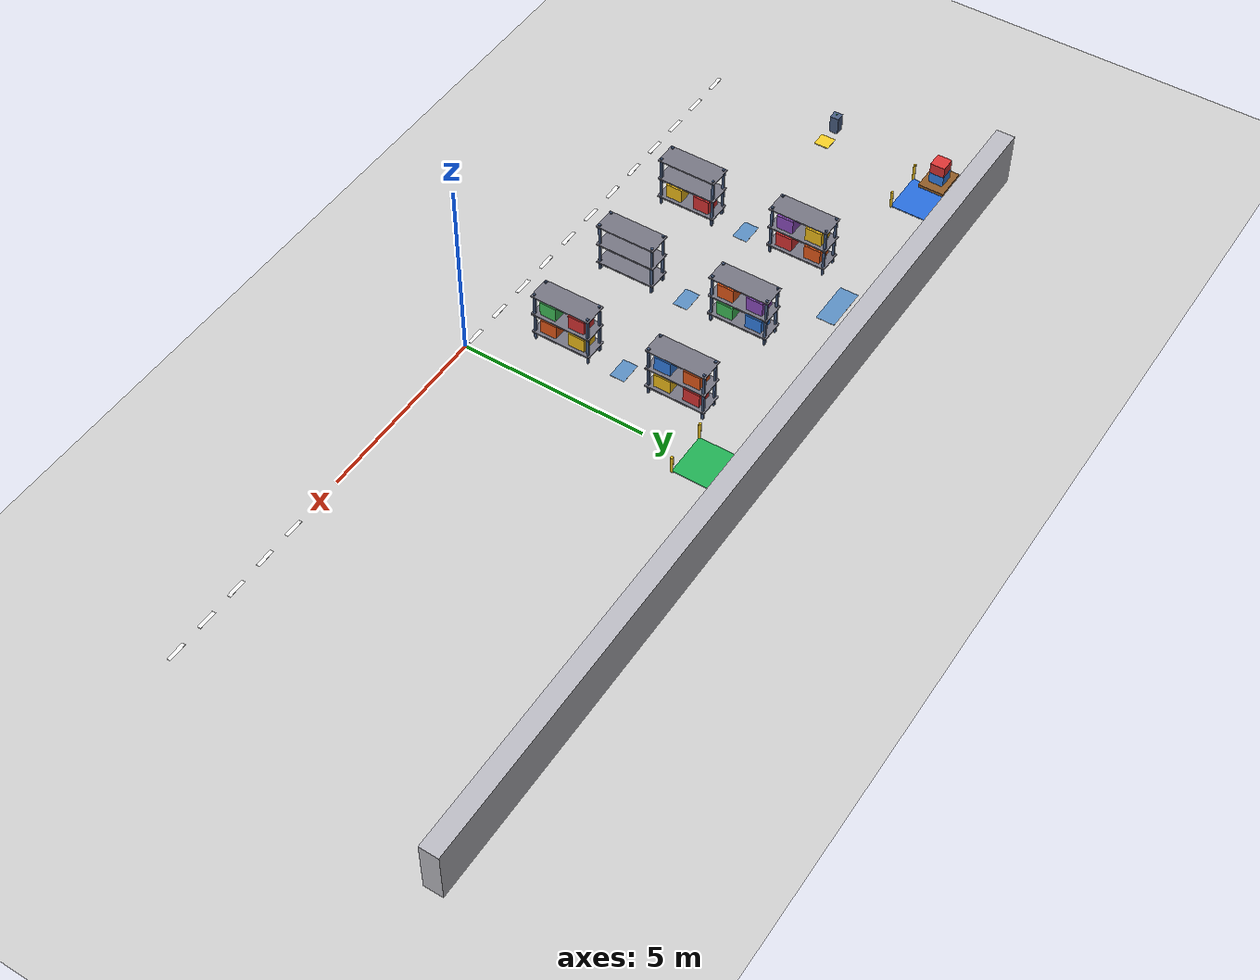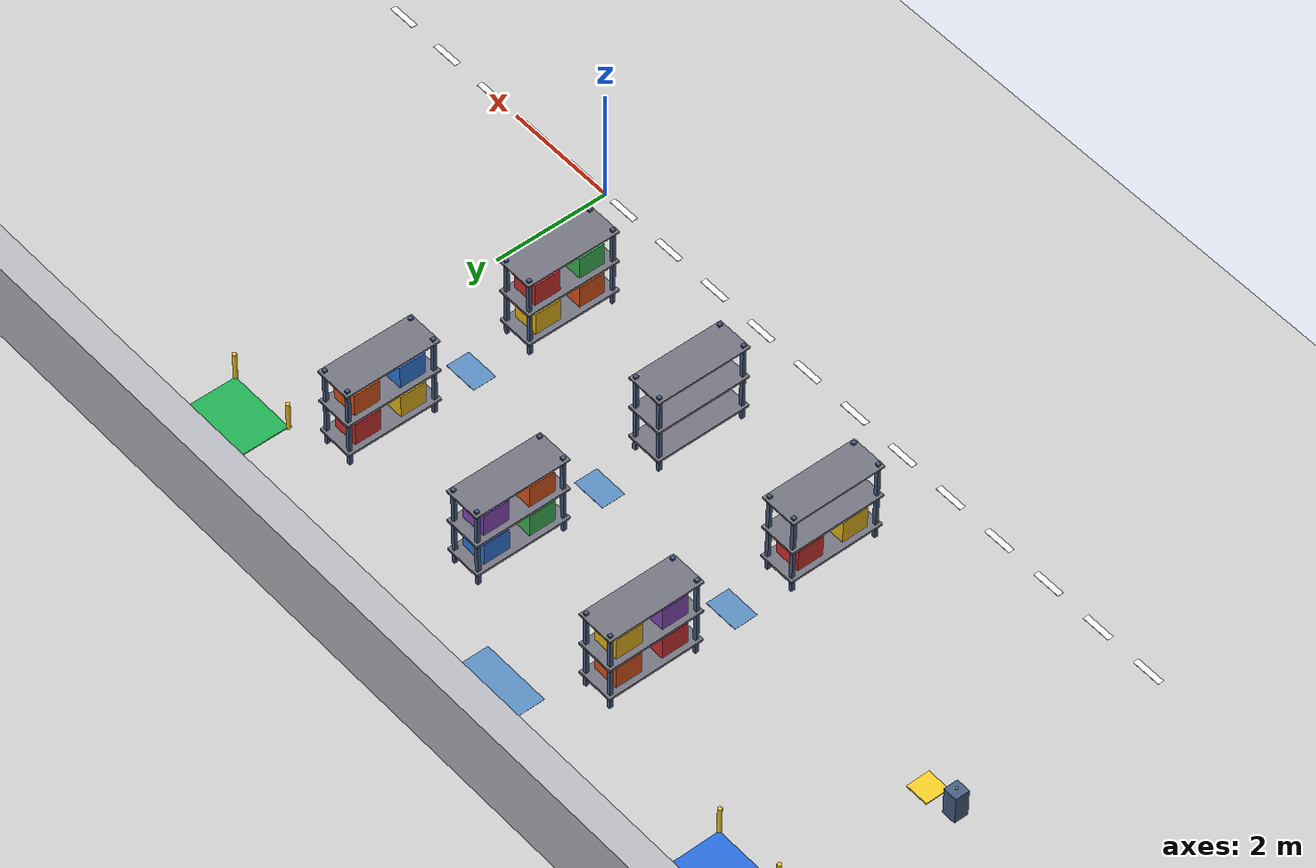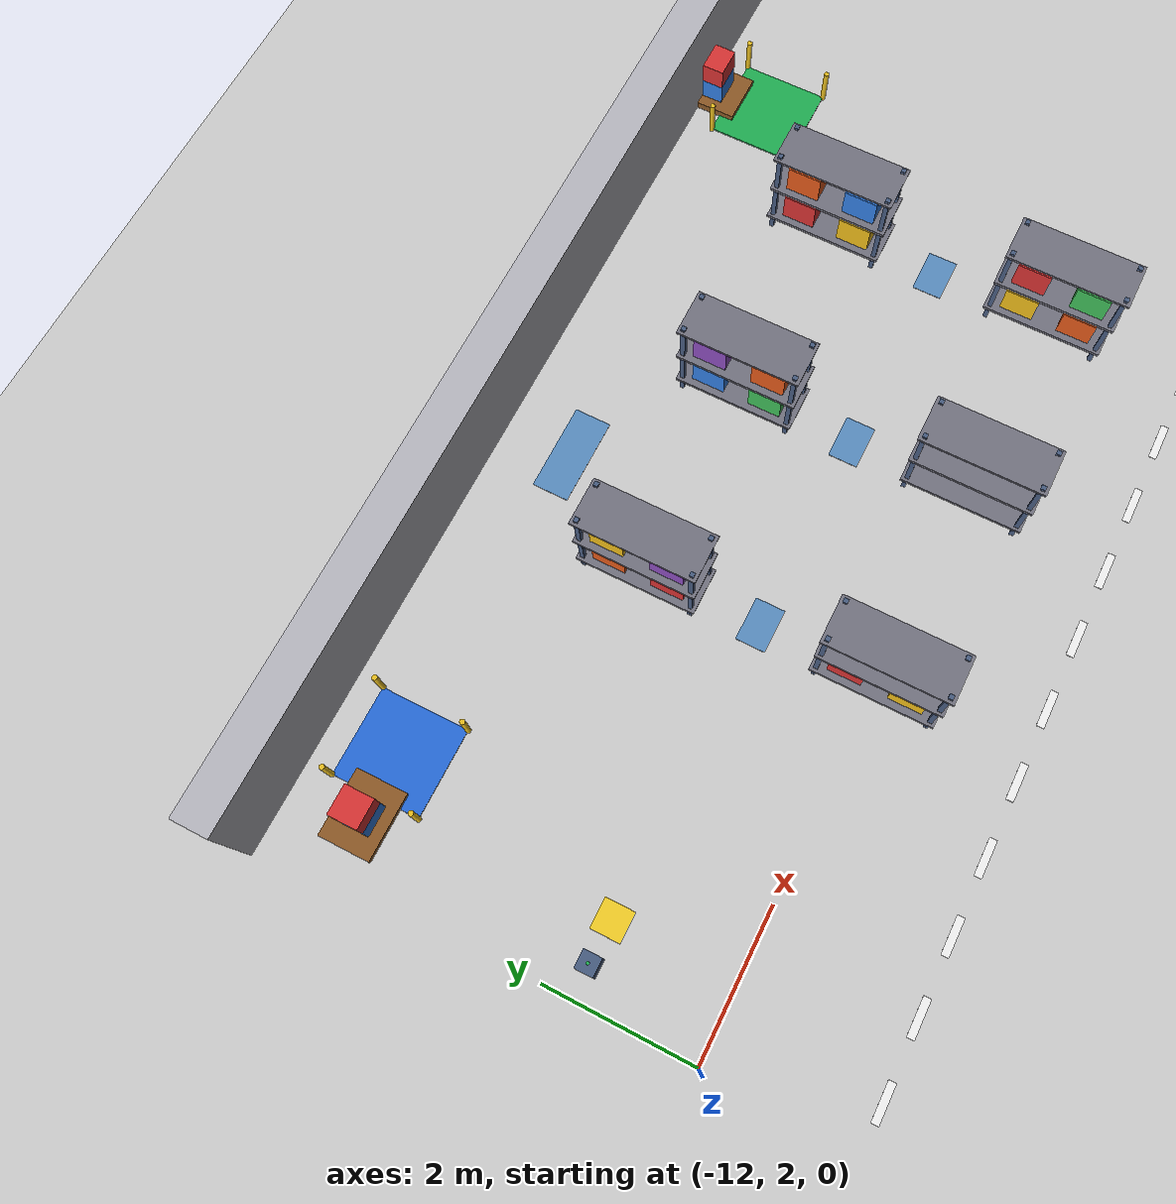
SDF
<sdf version="1.6">
 <world name="warehouse">
  <include><uri>model://ground_plane</uri></include>
  <include><uri>model://sun</uri></include>
  <model name="wall_north">
   <static>true</static>
   <pose>0 8.0 0.75 0 0 0</pose>
   <link name="wall">
    <visual name="wall_v">
     <geometry><box><size>24.5 0.5 1.5</size></box></geometry>
     <material>
      <ambient>0.72 0.72 0.75 1.0</ambient>
      <diffuse>0.72 0.72 0.75 1.0</diffuse>
      <specular>0.1 0.1 0.1 1</specular>
     </material>
    </visual>
    <collision name="wall_c"><geometry><box><size>24.5 0.5 1.5</size></box></geometry></collision>
   </link>
  </model>
  <model name="rack_r0_c0">
   <static>true</static>
   <pose>-7.0 5.2 0 0 0 0</pose>
   <link name="col">
    <collision name="col_c">
     <pose>0 0 0.75 0 0 0</pose>
     <geometry><box><size>0.6 1.0 1.5</size></box></geometry>
    </collision>
   </link>
   <link name="post_0_25_0_75">
    <visual name="post_0_25_0_75_v">
     <pose>0.25 0.75 0.75 0 0 0</pose>
     <geometry><box><size>0.06 0.06 1.5</size></box></geometry>
     <material>
      <ambient>0.28 0.36 0.5 1.0</ambient>
      <diffuse>0.28 0.36 0.5 1.0</diffuse>
      <specular>0.1 0.1 0.1 1</specular>
     </material>
    </visual>
   </link>
   <link name="post_0_25_m0_75">
    <visual name="post_0_25_m0_75_v">
     <pose>0.25 -0.75 0.75 0 0 0</pose>
     <geometry><box><size>0.06 0.06 1.5</size></box></geometry>
     <material>
      <ambient>0.28 0.36 0.5 1.0</ambient>
      <diffuse>0.28 0.36 0.5 1.0</diffuse>
      <specular>0.1 0.1 0.1 1</specular>
     </material>
    </visual>
   </link>
   <link name="post_m0_25_0_75">
    <visual name="post_m0_25_0_75_v">
     <pose>-0.25 0.75 0.75 0 0 0</pose>
     <geometry><box><size>0.06 0.06 1.5</size></box></geometry>
     <material>
      <ambient>0.28 0.36 0.5 1.0</ambient>
      <diffuse>0.28 0.36 0.5 1.0</diffuse>
      <specular>0.1 0.1 0.1 1</specular>
     </material>
    </visual>
   </link>
   <link name="post_m0_25_m0_75">
    <visual name="post_m0_25_m0_75_v">
     <pose>-0.25 -0.75 0.75 0 0 0</pose>
     <geometry><box><size>0.06 0.06 1.5</size></box></geometry>
     <material>
      <ambient>0.28 0.36 0.5 1.0</ambient>
      <diffuse>0.28 0.36 0.5 1.0</diffuse>
      <specular>0.1 0.1 0.1 1</specular>
     </material>
    </visual>
   </link>
   <link name="deck_low">
    <visual name="deck_low_v">
     <pose>0 0 0.25 0 0 0</pose>
     <geometry><box><size>0.64 1.6400000000000001 0.04</size></box></geometry>
     <material>
      <ambient>0.45 0.45 0.5 1.0</ambient>
      <diffuse>0.45 0.45 0.5 1.0</diffuse>
      <specular>0.1 0.1 0.1 1</specular>
     </material>
    </visual>
   </link>
   <link name="deck_mid">
    <visual name="deck_mid_v">
     <pose>0 0 0.85 0 0 0</pose>
     <geometry><box><size>0.64 1.6400000000000001 0.04</size></box></geometry>
     <material>
      <ambient>0.45 0.45 0.5 1.0</ambient>
      <diffuse>0.45 0.45 0.5 1.0</diffuse>
      <specular>0.1 0.1 0.1 1</specular>
     </material>
    </visual>
   </link>
   <link name="top_beam">
    <visual name="top_beam_v">
     <pose>0 0 1.45 0 0 0</pose>
     <geometry><box><size>0.64 1.6400000000000001 0.03</size></box></geometry>
     <material>
      <ambient>0.45 0.45 0.5 1.0</ambient>
      <diffuse>0.45 0.45 0.5 1.0</diffuse>
      <specular>0.1 0.1 0.1 1</specular>
     </material>
    </visual>
   </link>
   <link name="box_l1">
    <visual name="box_l1_v">
     <pose>0 0.4 0.47 0 0 0</pose>
     <geometry><box><size>0.45 0.45 0.4</size></box></geometry>
     <material>
      <ambient>0.9 0.35 0.1 1.0</ambient>
      <diffuse>0.9 0.35 0.1 1.0</diffuse>
      <specular>0.1 0.1 0.1 1</specular>
     </material>
    </visual>
   </link>
   <link name="box_l2">
    <visual name="box_l2_v">
     <pose>0 -0.4 0.47 0 0 0</pose>
     <geometry><box><size>0.45 0.45 0.4</size></box></geometry>
     <material>
      <ambient>0.85 0.2 0.2 1.0</ambient>
      <diffuse>0.85 0.2 0.2 1.0</diffuse>
      <specular>0.1 0.1 0.1 1</specular>
     </material>
    </visual>
   </link>
   <link name="box_h1">
    <visual name="box_h1_v">
     <pose>0 0.4 1.07 0 0 0</pose>
     <geometry><box><size>0.45 0.45 0.4</size></box></geometry>
     <material>
      <ambient>0.95 0.75 0.1 1.0</ambient>
      <diffuse>0.95 0.75 0.1 1.0</diffuse>
      <specular>0.1 0.1 0.1 1</specular>
     </material>
    </visual>
   </link>
   <link name="box_h2">
    <visual name="box_h2_v">
     <pose>0 -0.4 1.07 0 0 0</pose>
     <geometry><box><size>0.45 0.45 0.4</size></box></geometry>
     <material>
      <ambient>0.55 0.3 0.75 1.0</ambient>
      <diffuse>0.55 0.3 0.75 1.0</diffuse>
      <specular>0.1 0.1 0.1 1</specular>
     </material>
    </visual>
   </link>
  </model>
  <model name="rack_r0_c1">
   <static>true</static>
   <pose>-4.2 5.2 0 0 0 0</pose>
   <link name="col">
    <collision name="col_c">
     <pose>0 0 0.75 0 0 0</pose>
     <geometry><box><size>0.6 1.6 1.5</size></box></geometry>
    </collision>
   </link>
   <link name="post_0_25_0_75">
    <visual name="post_0_25_0_75_v">
     <pose>0.25 0.75 0.75 0 0 0</pose>
     <geometry><box><size>0.06 0.06 1.5</size></box></geometry>
     <material>
      <ambient>0.28 0.36 0.5 1.0</ambient>
      <diffuse>0.28 0.36 0.5 1.0</diffuse>
      <specular>0.1 0.1 0.1 1</specular>
     </material>
    </visual>
   </link>
   <link name="post_0_25_m0_75">
    <visual name="post_0_25_m0_75_v">
     <pose>0.25 -0.75 0.75 0 0 0</pose>
     <geometry><box><size>0.06 0.06 1.5</size></box></geometry>
     <material>
      <ambient>0.28 0.36 0.5 1.0</ambient>
      <diffuse>0.28 0.36 0.5 1.0</diffuse>
      <specular>0.1 0.1 0.1 1</specular>
     </material>
    </visual>
   </link>
   <link name="post_m0_25_0_75">
    <visual name="post_m0_25_0_75_v">
     <pose>-0.25 0.75 0.75 0 0 0</pose>
     <geometry><box><size>0.06 0.06 1.5</size></box></geometry>
     <material>
      <ambient>0.28 0.36 0.5 1.0</ambient>
      <diffuse>0.28 0.36 0.5 1.0</diffuse>
      <specular>0.1 0.1 0.1 1</specular>
     </material>
    </visual>
   </link>
   <link name="post_m0_25_m0_75">
    <visual name="post_m0_25_m0_75_v">
     <pose>-0.25 -0.75 0.75 0 0 0</pose>
     <geometry><box><size>0.06 0.06 1.5</size></box></geometry>
     <material>
      <ambient>0.28 0.36 0.5 1.0</ambient>
      <diffuse>0.28 0.36 0.5 1.0</diffuse>
      <specular>0.1 0.1 0.1 1</specular>
     </material>
    </visual>
   </link>
   <link name="deck_low">
    <visual name="deck_low_v">
     <pose>0 0 0.25 0 0 0</pose>
     <geometry><box><size>0.64 1.6400000000000001 0.04</size></box></geometry>
     <material>
      <ambient>0.45 0.45 0.5 1.0</ambient>
      <diffuse>0.45 0.45 0.5 1.0</diffuse>
      <specular>0.1 0.1 0.1 1</specular>
     </material>
    </visual>
   </link>
   <link name="deck_mid">
    <visual name="deck_mid_v">
     <pose>0 0 0.85 0 0 0</pose>
     <geometry><box><size>0.64 1.6400000000000001 0.04</size></box></geometry>
     <material>
      <ambient>0.45 0.45 0.5 1.0</ambient>
      <diffuse>0.45 0.45 0.5 1.0</diffuse>
      <specular>0.1 0.1 0.1 1</specular>
     </material>
    </visual>
   </link>
   <link name="top_beam">
    <visual name="top_beam_v">
     <pose>0 0 1.45 0 0 0</pose>
     <geometry><box><size>0.64 1.6400000000000001 0.03</size></box></geometry>
     <material>
      <ambient>0.45 0.45 0.5 1.0</ambient>
      <diffuse>0.45 0.45 0.5 1.0</diffuse>
      <specular>0.1 0.1 0.1 1</specular>
     </material>
    </visual>
   </link>
   <link name="box_l1">
    <visual name="box_l1_v">
     <pose>0 0.4 0.47 0 0 0</pose>
     <geometry><box><size>0.45 0.45 0.4</size></box></geometry>
     <material>
      <ambient>0.2 0.5 0.9 1.0</ambient>
      <diffuse>0.2 0.5 0.9 1.0</diffuse>
      <specular>0.1 0.1 0.1 1</specular>
     </material>
    </visual>
   </link>
   <link name="box_l2">
    <visual name="box_l2_v">
     <pose>0 -0.4 0.47 0 0 0</pose>
     <geometry><box><size>0.45 0.45 0.4</size></box></geometry>
     <material>
      <ambient>0.25 0.75 0.35 1.0</ambient>
      <diffuse>0.25 0.75 0.35 1.0</diffuse>
      <specular>0.1 0.1 0.1 1</specular>
     </material>
    </visual>
   </link>
   <link name="box_h1">
    <visual name="box_h1_v">
     <pose>0 0.4 1.07 0 0 0</pose>
     <geometry><box><size>0.45 0.45 0.4</size></box></geometry>
     <material>
      <ambient>0.55 0.3 0.75 1.0</ambient>
      <diffuse>0.55 0.3 0.75 1.0</diffuse>
      <specular>0.1 0.1 0.1 1</specular>
     </material>
    </visual>
   </link>
   <link name="box_h2">
    <visual name="box_h2_v">
     <pose>0 -0.4 1.07 0 0 0</pose>
     <geometry><box><size>0.45 0.45 0.4</size></box></geometry>
     <material>
      <ambient>0.9 0.35 0.1 1.0</ambient>
      <diffuse>0.9 0.35 0.1 1.0</diffuse>
      <specular>0.1 0.1 0.1 1</specular>
     </material>
    </visual>
   </link>
  </model>
  <model name="rack_r0_c2">
   <static>true</static>
   <pose>-1.4 5.2 0 0 0 0</pose>
   <link name="col">
    <collision name="col_c">
     <pose>0 0 0.75 0 0 0</pose>
     <geometry><box><size>0.6 1.6 1.5</size></box></geometry>
    </collision>
   </link>
   <link name="post_0_25_0_75">
    <visual name="post_0_25_0_75_v">
     <pose>0.25 0.75 0.75 0 0 0</pose>
     <geometry><box><size>0.06 0.06 1.5</size></box></geometry>
     <material>
      <ambient>0.28 0.36 0.5 1.0</ambient>
      <diffuse>0.28 0.36 0.5 1.0</diffuse>
      <specular>0.1 0.1 0.1 1</specular>
     </material>
    </visual>
   </link>
   <link name="post_0_25_m0_75">
    <visual name="post_0_25_m0_75_v">
     <pose>0.25 -0.75 0.75 0 0 0</pose>
     <geometry><box><size>0.06 0.06 1.5</size></box></geometry>
     <material>
      <ambient>0.28 0.36 0.5 1.0</ambient>
      <diffuse>0.28 0.36 0.5 1.0</diffuse>
      <specular>0.1 0.1 0.1 1</specular>
     </material>
    </visual>
   </link>
   <link name="post_m0_25_0_75">
    <visual name="post_m0_25_0_75_v">
     <pose>-0.25 0.75 0.75 0 0 0</pose>
     <geometry><box><size>0.06 0.06 1.5</size></box></geometry>
     <material>
      <ambient>0.28 0.36 0.5 1.0</ambient>
      <diffuse>0.28 0.36 0.5 1.0</diffuse>
      <specular>0.1 0.1 0.1 1</specular>
     </material>
    </visual>
   </link>
   <link name="post_m0_25_m0_75">
    <visual name="post_m0_25_m0_75_v">
     <pose>-0.25 -0.75 0.75 0 0 0</pose>
     <geometry><box><size>0.06 0.06 1.5</size></box></geometry>
     <material>
      <ambient>0.28 0.36 0.5 1.0</ambient>
      <diffuse>0.28 0.36 0.5 1.0</diffuse>
      <specular>0.1 0.1 0.1 1</specular>
     </material>
    </visual>
   </link>
   <link name="deck_low">
    <visual name="deck_low_v">
     <pose>0 0 0.25 0 0 0</pose>
     <geometry><box><size>0.64 1.6400000000000001 0.04</size></box></geometry>
     <material>
      <ambient>0.45 0.45 0.5 1.0</ambient>
      <diffuse>0.45 0.45 0.5 1.0</diffuse>
      <specular>0.1 0.1 0.1 1</specular>
     </material>
    </visual>
   </link>
   <link name="deck_mid">
    <visual name="deck_mid_v">
     <pose>0 0 0.85 0 0 0</pose>
     <geometry><box><size>0.64 1.6400000000000001 0.04</size></box></geometry>
     <material>
      <ambient>0.45 0.45 0.5 1.0</ambient>
      <diffuse>0.45 0.45 0.5 1.0</diffuse>
      <specular>0.1 0.1 0.1 1</specular>
     </material>
    </visual>
   </link>
   <link name="top_beam">
    <visual name="top_beam_v">
     <pose>0 0 1.45 0 0 0</pose>
     <geometry><box><size>0.64 1.6400000000000001 0.03</size></box></geometry>
     <material>
      <ambient>0.45 0.45 0.5 1.0</ambient>
      <diffuse>0.45 0.45 0.5 1.0</diffuse>
      <specular>0.1 0.1 0.1 1</specular>
     </material>
    </visual>
   </link>
   <link name="box_l1">
    <visual name="box_l1_v">
     <pose>0 0.4 0.47 0 0 0</pose>
     <geometry><box><size>0.45 0.45 0.4</size></box></geometry>
     <material>
      <ambient>0.85 0.2 0.2 1.0</ambient>
      <diffuse>0.85 0.2 0.2 1.0</diffuse>
      <specular>0.1 0.1 0.1 1</specular>
     </material>
    </visual>
   </link>
   <link name="box_l2">
    <visual name="box_l2_v">
     <pose>0 -0.4 0.47 0 0 0</pose>
     <geometry><box><size>0.45 0.45 0.4</size></box></geometry>
     <material>
      <ambient>0.95 0.75 0.1 1.0</ambient>
      <diffuse>0.95 0.75 0.1 1.0</diffuse>
      <specular>0.1 0.1 0.1 1</specular>
     </material>
    </visual>
   </link>
   <link name="box_h1">
    <visual name="box_h1_v">
     <pose>0 0.4 1.07 0 0 0</pose>
     <geometry><box><size>0.45 0.45 0.4</size></box></geometry>
     <material>
      <ambient>0.9 0.35 0.1 1.0</ambient>
      <diffuse>0.9 0.35 0.1 1.0</diffuse>
      <specular>0.1 0.1 0.1 1</specular>
     </material>
    </visual>
   </link>
   <link name="box_h2">
    <visual name="box_h2_v">
     <pose>0 -0.4 1.07 0 0 0</pose>
     <geometry><box><size>0.45 0.45 0.4</size></box></geometry>
     <material>
      <ambient>0.2 0.5 0.9 1.0</ambient>
      <diffuse>0.2 0.5 0.9 1.0</diffuse>
      <specular>0.1 0.1 0.1 1</specular>
     </material>
    </visual>
   </link>
  </model>
  <model name="rack_r1_c0">
   <static>true</static>
   <pose>-7.0 2.0 0 0 0 0</pose>
   <link name="col">
    <collision name="col_c">
     <pose>0 0 0.75 0 0 0</pose>
     <geometry><box><size>0.6 1.0 1.5</size></box></geometry>
    </collision>
   </link>
   <link name="post_0_25_0_75">
    <visual name="post_0_25_0_75_v">
     <pose>0.25 0.75 0.75 0 0 0</pose>
     <geometry><box><size>0.06 0.06 1.5</size></box></geometry>
     <material>
      <ambient>0.28 0.36 0.5 1.0</ambient>
      <diffuse>0.28 0.36 0.5 1.0</diffuse>
      <specular>0.1 0.1 0.1 1</specular>
     </material>
    </visual>
   </link>
   <link name="post_0_25_m0_75">
    <visual name="post_0_25_m0_75_v">
     <pose>0.25 -0.75 0.75 0 0 0</pose>
     <geometry><box><size>0.06 0.06 1.5</size></box></geometry>
     <material>
      <ambient>0.28 0.36 0.5 1.0</ambient>
      <diffuse>0.28 0.36 0.5 1.0</diffuse>
      <specular>0.1 0.1 0.1 1</specular>
     </material>
    </visual>
   </link>
   <link name="post_m0_25_0_75">
    <visual name="post_m0_25_0_75_v">
     <pose>-0.25 0.75 0.75 0 0 0</pose>
     <geometry><box><size>0.06 0.06 1.5</size></box></geometry>
     <material>
      <ambient>0.28 0.36 0.5 1.0</ambient>
      <diffuse>0.28 0.36 0.5 1.0</diffuse>
      <specular>0.1 0.1 0.1 1</specular>
     </material>
    </visual>
   </link>
   <link name="post_m0_25_m0_75">
    <visual name="post_m0_25_m0_75_v">
     <pose>-0.25 -0.75 0.75 0 0 0</pose>
     <geometry><box><size>0.06 0.06 1.5</size></box></geometry>
     <material>
      <ambient>0.28 0.36 0.5 1.0</ambient>
      <diffuse>0.28 0.36 0.5 1.0</diffuse>
      <specular>0.1 0.1 0.1 1</specular>
     </material>
    </visual>
   </link>
   <link name="deck_low">
    <visual name="deck_low_v">
     <pose>0 0 0.25 0 0 0</pose>
     <geometry><box><size>0.64 1.6400000000000001 0.04</size></box></geometry>
     <material>
      <ambient>0.45 0.45 0.5 1.0</ambient>
      <diffuse>0.45 0.45 0.5 1.0</diffuse>
      <specular>0.1 0.1 0.1 1</specular>
     </material>
    </visual>
   </link>
   <link name="deck_mid">
    <visual name="deck_mid_v">
     <pose>0 0 0.85 0 0 0</pose>
     <geometry><box><size>0.64 1.6400000000000001 0.04</size></box></geometry>
     <material>
      <ambient>0.45 0.45 0.5 1.0</ambient>
      <diffuse>0.45 0.45 0.5 1.0</diffuse>
      <specular>0.1 0.1 0.1 1</specular>
     </material>
    </visual>
   </link>
   <link name="top_beam">
    <visual name="top_beam_v">
     <pose>0 0 1.45 0 0 0</pose>
     <geometry><box><size>0.64 1.6400000000000001 0.03</size></box></geometry>
     <material>
      <ambient>0.45 0.45 0.5 1.0</ambient>
      <diffuse>0.45 0.45 0.5 1.0</diffuse>
      <specular>0.1 0.1 0.1 1</specular>
     </material>
    </visual>
   </link>
   <link name="box_l1">
    <visual name="box_l1_v">
     <pose>0 0.4 0.47 0 0 0</pose>
     <geometry><box><size>0.45 0.45 0.4</size></box></geometry>
     <material>
      <ambient>0.85 0.2 0.2 1.0</ambient>
      <diffuse>0.85 0.2 0.2 1.0</diffuse>
      <specular>0.1 0.1 0.1 1</specular>
     </material>
    </visual>
   </link>
   <link name="box_l2">
    <visual name="box_l2_v">
     <pose>0 -0.4 0.47 0 0 0</pose>
     <geometry><box><size>0.45 0.45 0.4</size></box></geometry>
     <material>
      <ambient>0.95 0.75 0.1 1.0</ambient>
      <diffuse>0.95 0.75 0.1 1.0</diffuse>
      <specular>0.1 0.1 0.1 1</specular>
     </material>
    </visual>
   </link>
  </model>
  <model name="rack_r1_c1">
   <static>true</static>
   <pose>-4.2 2.0 0 0 0 0</pose>
   <link name="col">
    <collision name="col_c">
     <pose>0 0 0.75 0 0 0</pose>
     <geometry><box><size>0.6 1.6 1.5</size></box></geometry>
    </collision>
   </link>
   <link name="post_0_25_0_75">
    <visual name="post_0_25_0_75_v">
     <pose>0.25 0.75 0.75 0 0 0</pose>
     <geometry><box><size>0.06 0.06 1.5</size></box></geometry>
     <material>
      <ambient>0.28 0.36 0.5 1.0</ambient>
      <diffuse>0.28 0.36 0.5 1.0</diffuse>
      <specular>0.1 0.1 0.1 1</specular>
     </material>
    </visual>
   </link>
   <link name="post_0_25_m0_75">
    <visual name="post_0_25_m0_75_v">
     <pose>0.25 -0.75 0.75 0 0 0</pose>
     <geometry><box><size>0.06 0.06 1.5</size></box></geometry>
     <material>
      <ambient>0.28 0.36 0.5 1.0</ambient>
      <diffuse>0.28 0.36 0.5 1.0</diffuse>
      <specular>0.1 0.1 0.1 1</specular>
     </material>
    </visual>
   </link>
   <link name="post_m0_25_0_75">
    <visual name="post_m0_25_0_75_v">
     <pose>-0.25 0.75 0.75 0 0 0</pose>
     <geometry><box><size>0.06 0.06 1.5</size></box></geometry>
     <material>
      <ambient>0.28 0.36 0.5 1.0</ambient>
      <diffuse>0.28 0.36 0.5 1.0</diffuse>
      <specular>0.1 0.1 0.1 1</specular>
     </material>
    </visual>
   </link>
   <link name="post_m0_25_m0_75">
    <visual name="post_m0_25_m0_75_v">
     <pose>-0.25 -0.75 0.75 0 0 0</pose>
     <geometry><box><size>0.06 0.06 1.5</size></box></geometry>
     <material>
      <ambient>0.28 0.36 0.5 1.0</ambient>
      <diffuse>0.28 0.36 0.5 1.0</diffuse>
      <specular>0.1 0.1 0.1 1</specular>
     </material>
    </visual>
   </link>
   <link name="deck_low">
    <visual name="deck_low_v">
     <pose>0 0 0.25 0 0 0</pose>
     <geometry><box><size>0.64 1.6400000000000001 0.04</size></box></geometry>
     <material>
      <ambient>0.45 0.45 0.5 1.0</ambient>
      <diffuse>0.45 0.45 0.5 1.0</diffuse>
      <specular>0.1 0.1 0.1 1</specular>
     </material>
    </visual>
   </link>
   <link name="deck_mid">
    <visual name="deck_mid_v">
     <pose>0 0 0.85 0 0 0</pose>
     <geometry><box><size>0.64 1.6400000000000001 0.04</size></box></geometry>
     <material>
      <ambient>0.45 0.45 0.5 1.0</ambient>
      <diffuse>0.45 0.45 0.5 1.0</diffuse>
      <specular>0.1 0.1 0.1 1</specular>
     </material>
    </visual>
   </link>
   <link name="top_beam">
    <visual name="top_beam_v">
     <pose>0 0 1.45 0 0 0</pose>
     <geometry><box><size>0.64 1.6400000000000001 0.03</size></box></geometry>
     <material>
      <ambient>0.45 0.45 0.5 1.0</ambient>
      <diffuse>0.45 0.45 0.5 1.0</diffuse>
      <specular>0.1 0.1 0.1 1</specular>
     </material>
    </visual>
   </link>
  </model>
  <model name="rack_r1_c2">
   <static>true</static>
   <pose>-1.4 2.0 0 0 0 0</pose>
   <link name="col">
    <collision name="col_c">
     <pose>0 0 0.75 0 0 0</pose>
     <geometry><box><size>0.6 1.6 1.5</size></box></geometry>
    </collision>
   </link>
   <link name="post_0_25_0_75">
    <visual name="post_0_25_0_75_v">
     <pose>0.25 0.75 0.75 0 0 0</pose>
     <geometry><box><size>0.06 0.06 1.5</size></box></geometry>
     <material>
      <ambient>0.28 0.36 0.5 1.0</ambient>
      <diffuse>0.28 0.36 0.5 1.0</diffuse>
      <specular>0.1 0.1 0.1 1</specular>
     </material>
    </visual>
   </link>
   <link name="post_0_25_m0_75">
    <visual name="post_0_25_m0_75_v">
     <pose>0.25 -0.75 0.75 0 0 0</pose>
     <geometry><box><size>0.06 0.06 1.5</size></box></geometry>
     <material>
      <ambient>0.28 0.36 0.5 1.0</ambient>
      <diffuse>0.28 0.36 0.5 1.0</diffuse>
      <specular>0.1 0.1 0.1 1</specular>
     </material>
    </visual>
   </link>
   <link name="post_m0_25_0_75">
    <visual name="post_m0_25_0_75_v">
     <pose>-0.25 0.75 0.75 0 0 0</pose>
     <geometry><box><size>0.06 0.06 1.5</size></box></geometry>
     <material>
      <ambient>0.28 0.36 0.5 1.0</ambient>
      <diffuse>0.28 0.36 0.5 1.0</diffuse>
      <specular>0.1 0.1 0.1 1</specular>
     </material>
    </visual>
   </link>
   <link name="post_m0_25_m0_75">
    <visual name="post_m0_25_m0_75_v">
     <pose>-0.25 -0.75 0.75 0 0 0</pose>
     <geometry><box><size>0.06 0.06 1.5</size></box></geometry>
     <material>
      <ambient>0.28 0.36 0.5 1.0</ambient>
      <diffuse>0.28 0.36 0.5 1.0</diffuse>
      <specular>0.1 0.1 0.1 1</specular>
     </material>
    </visual>
   </link>
   <link name="deck_low">
    <visual name="deck_low_v">
     <pose>0 0 0.25 0 0 0</pose>
     <geometry><box><size>0.64 1.6400000000000001 0.04</size></box></geometry>
     <material>
      <ambient>0.45 0.45 0.5 1.0</ambient>
      <diffuse>0.45 0.45 0.5 1.0</diffuse>
      <specular>0.1 0.1 0.1 1</specular>
     </material>
    </visual>
   </link>
   <link name="deck_mid">
    <visual name="deck_mid_v">
     <pose>0 0 0.85 0 0 0</pose>
     <geometry><box><size>0.64 1.6400000000000001 0.04</size></box></geometry>
     <material>
      <ambient>0.45 0.45 0.5 1.0</ambient>
      <diffuse>0.45 0.45 0.5 1.0</diffuse>
      <specular>0.1 0.1 0.1 1</specular>
     </material>
    </visual>
   </link>
   <link name="top_beam">
    <visual name="top_beam_v">
     <pose>0 0 1.45 0 0 0</pose>
     <geometry><box><size>0.64 1.6400000000000001 0.03</size></box></geometry>
     <material>
      <ambient>0.45 0.45 0.5 1.0</ambient>
      <diffuse>0.45 0.45 0.5 1.0</diffuse>
      <specular>0.1 0.1 0.1 1</specular>
     </material>
    </visual>
   </link>
   <link name="box_l1">
    <visual name="box_l1_v">
     <pose>0 0.4 0.47 0 0 0</pose>
     <geometry><box><size>0.45 0.45 0.4</size></box></geometry>
     <material>
      <ambient>0.95 0.75 0.1 1.0</ambient>
      <diffuse>0.95 0.75 0.1 1.0</diffuse>
      <specular>0.1 0.1 0.1 1</specular>
     </material>
    </visual>
   </link>
   <link name="box_l2">
    <visual name="box_l2_v">
     <pose>0 -0.4 0.47 0 0 0</pose>
     <geometry><box><size>0.45 0.45 0.4</size></box></geometry>
     <material>
      <ambient>0.9 0.35 0.1 1.0</ambient>
      <diffuse>0.9 0.35 0.1 1.0</diffuse>
      <specular>0.1 0.1 0.1 1</specular>
     </material>
    </visual>
   </link>
   <link name="box_h1">
    <visual name="box_h1_v">
     <pose>0 0.4 1.07 0 0 0</pose>
     <geometry><box><size>0.45 0.45 0.4</size></box></geometry>
     <material>
      <ambient>0.85 0.2 0.2 1.0</ambient>
      <diffuse>0.85 0.2 0.2 1.0</diffuse>
      <specular>0.1 0.1 0.1 1</specular>
     </material>
    </visual>
   </link>
   <link name="box_h2">
    <visual name="box_h2_v">
     <pose>0 -0.4 1.07 0 0 0</pose>
     <geometry><box><size>0.45 0.45 0.4</size></box></geometry>
     <material>
      <ambient>0.25 0.75 0.35 1.0</ambient>
      <diffuse>0.25 0.75 0.35 1.0</diffuse>
      <specular>0.1 0.1 0.1 1</specular>
     </material>
    </visual>
   </link>
  </model>
  <model name="station_pickup_n">
   <static>true</static>
   <pose>0.0 6.8 0 0 0 1.5707963</pose>
   <link name="zone">
    <visual name="zone_v">
     <pose>0 0 0.01 0 0 0</pose>
     <geometry><box><size>1.2 1.2 0.02</size></box></geometry>
     <material>
      <ambient>0.12 0.68 0.32 1.0</ambient>
      <diffuse>0.12 0.68 0.32 1.0</diffuse>
      <specular>0.1 0.1 0.1 1</specular>
     </material>
    </visual>
   </link>
   <link name="stopline">
    <visual name="stopline_v">
     <pose>0 0.28 0.011 0 0 0</pose>
     <geometry><box><size>1.1 0.06 0.012</size></box></geometry>
     <material>
      <ambient>0.95 0.95 0.95 1.0</ambient>
      <diffuse>0.95 0.95 0.95 1.0</diffuse>
      <specular>0.1 0.1 0.1 1</specular>
     </material>
    </visual>
   </link>
   <link name="bollard_0_6_0_6">
    <visual name="bollard_0_6_0_6_v">
     <pose>0.6 0.6 0.25 0 0 0</pose>
     <geometry><cylinder><radius>0.035</radius><length>0.5</length></cylinder></geometry>
     <material>
      <ambient>0.92 0.75 0.12 1.0</ambient>
      <diffuse>0.92 0.75 0.12 1.0</diffuse>
      <specular>0.1 0.1 0.1 1</specular>
     </material>
    </visual>
   </link>
   <link name="bollard_0_6_m0_6">
    <visual name="bollard_0_6_m0_6_v">
     <pose>0.6 -0.6 0.25 0 0 0</pose>
     <geometry><cylinder><radius>0.035</radius><length>0.5</length></cylinder></geometry>
     <material>
      <ambient>0.92 0.75 0.12 1.0</ambient>
      <diffuse>0.92 0.75 0.12 1.0</diffuse>
      <specular>0.1 0.1 0.1 1</specular>
     </material>
    </visual>
   </link>
   <link name="bollard_m0_6_0_6">
    <visual name="bollard_m0_6_0_6_v">
     <pose>-0.6 0.6 0.25 0 0 0</pose>
     <geometry><cylinder><radius>0.035</radius><length>0.5</length></cylinder></geometry>
     <material>
      <ambient>0.92 0.75 0.12 1.0</ambient>
      <diffuse>0.92 0.75 0.12 1.0</diffuse>
      <specular>0.1 0.1 0.1 1</specular>
     </material>
    </visual>
   </link>
   <link name="bollard_m0_6_m0_6">
    <visual name="bollard_m0_6_m0_6_v">
     <pose>-0.6 -0.6 0.25 0 0 0</pose>
     <geometry><cylinder><radius>0.035</radius><length>0.5</length></cylinder></geometry>
     <material>
      <ambient>0.92 0.75 0.12 1.0</ambient>
      <diffuse>0.92 0.75 0.12 1.0</diffuse>
      <specular>0.1 0.1 0.1 1</specular>
     </material>
    </visual>
   </link>
   <link name="pallet">
    <visual name="pallet_v">
     <pose>0.85 0 0.05 0 0 0</pose>
     <geometry><box><size>0.9 0.7 0.1</size></box></geometry>
     <material>
      <ambient>0.55 0.35 0.15 1.0</ambient>
      <diffuse>0.55 0.35 0.15 1.0</diffuse>
      <specular>0.1 0.1 0.1 1</specular>
     </material>
    </visual>
    <collision name="pallet_c">
     <pose>0.85 0 0.05 0 0 0</pose>
     <geometry><box><size>0.9 0.7 0.1</size></box></geometry>
    </collision>
   </link>
   <link name="goods1">
    <visual name="goods1_v">
     <pose>0.85 0 0.25 0 0 0</pose>
     <geometry><box><size>0.4 0.4 0.3</size></box></geometry>
     <material>
      <ambient>0.2 0.5 0.9 1.0</ambient>
      <diffuse>0.2 0.5 0.9 1.0</diffuse>
      <specular>0.1 0.1 0.1 1</specular>
     </material>
    </visual>
    <collision name="goods1_c">
     <pose>0.85 0 0.25 0 0 0</pose>
     <geometry><box><size>0.4 0.4 0.3</size></box></geometry>
    </collision>
   </link>
   <link name="goods2">
    <visual name="goods2_v">
     <pose>0.85 0 0.55 0 0 0</pose>
     <geometry><box><size>0.4 0.4 0.3</size></box></geometry>
     <material>
      <ambient>0.85 0.2 0.2 1.0</ambient>
      <diffuse>0.85 0.2 0.2 1.0</diffuse>
      <specular>0.1 0.1 0.1 1</specular>
     </material>
    </visual>
    <collision name="goods2_c">
     <pose>0.85 0 0.55 0 0 0</pose>
     <geometry><box><size>0.4 0.4 0.3</size></box></geometry>
    </collision>
   </link>
  </model>
  <model name="station_dropoff_nw">
   <static>true</static>
   <pose>-10.4 6.8 0 0 0 0.0</pose>
   <link name="zone">
    <visual name="zone_v">
     <pose>0 0 0.01 0 0 0</pose>
     <geometry><box><size>1.2 1.2 0.02</size></box></geometry>
     <material>
      <ambient>0.15 0.42 0.85 1.0</ambient>
      <diffuse>0.15 0.42 0.85 1.0</diffuse>
      <specular>0.1 0.1 0.1 1</specular>
     </material>
    </visual>
   </link>
   <link name="stopline">
    <visual name="stopline_v">
     <pose>0 0.28 0.011 0 0 0</pose>
     <geometry><box><size>1.1 0.06 0.012</size></box></geometry>
     <material>
      <ambient>0.95 0.95 0.95 1.0</ambient>
      <diffuse>0.95 0.95 0.95 1.0</diffuse>
      <specular>0.1 0.1 0.1 1</specular>
     </material>
    </visual>
   </link>
   <link name="bollard_0_6_0_6">
    <visual name="bollard_0_6_0_6_v">
     <pose>0.6 0.6 0.25 0 0 0</pose>
     <geometry><cylinder><radius>0.035</radius><length>0.5</length></cylinder></geometry>
     <material>
      <ambient>0.92 0.75 0.12 1.0</ambient>
      <diffuse>0.92 0.75 0.12 1.0</diffuse>
      <specular>0.1 0.1 0.1 1</specular>
     </material>
    </visual>
   </link>
   <link name="bollard_0_6_m0_6">
    <visual name="bollard_0_6_m0_6_v">
     <pose>0.6 -0.6 0.25 0 0 0</pose>
     <geometry><cylinder><radius>0.035</radius><length>0.5</length></cylinder></geometry>
     <material>
      <ambient>0.92 0.75 0.12 1.0</ambient>
      <diffuse>0.92 0.75 0.12 1.0</diffuse>
      <specular>0.1 0.1 0.1 1</specular>
     </material>
    </visual>
   </link>
   <link name="bollard_m0_6_0_6">
    <visual name="bollard_m0_6_0_6_v">
     <pose>-0.6 0.6 0.25 0 0 0</pose>
     <geometry><cylinder><radius>0.035</radius><length>0.5</length></cylinder></geometry>
     <material>
      <ambient>0.92 0.75 0.12 1.0</ambient>
      <diffuse>0.92 0.75 0.12 1.0</diffuse>
      <specular>0.1 0.1 0.1 1</specular>
     </material>
    </visual>
   </link>
   <link name="bollard_m0_6_m0_6">
    <visual name="bollard_m0_6_m0_6_v">
     <pose>-0.6 -0.6 0.25 0 0 0</pose>
     <geometry><cylinder><radius>0.035</radius><length>0.5</length></cylinder></geometry>
     <material>
      <ambient>0.92 0.75 0.12 1.0</ambient>
      <diffuse>0.92 0.75 0.12 1.0</diffuse>
      <specular>0.1 0.1 0.1 1</specular>
     </material>
    </visual>
   </link>
   <link name="pallet">
    <visual name="pallet_v">
     <pose>-0.85 0 0.05 0 0 0</pose>
     <geometry><box><size>0.9 0.7 0.1</size></box></geometry>
     <material>
      <ambient>0.55 0.35 0.15 1.0</ambient>
      <diffuse>0.55 0.35 0.15 1.0</diffuse>
      <specular>0.1 0.1 0.1 1</specular>
     </material>
    </visual>
    <collision name="pallet_c">
     <pose>-0.85 0 0.05 0 0 0</pose>
     <geometry><box><size>0.9 0.7 0.1</size></box></geometry>
    </collision>
   </link>
   <link name="goods1">
    <visual name="goods1_v">
     <pose>-0.85 0 0.25 0 0 0</pose>
     <geometry><box><size>0.4 0.4 0.3</size></box></geometry>
     <material>
      <ambient>0.2 0.5 0.9 1.0</ambient>
      <diffuse>0.2 0.5 0.9 1.0</diffuse>
      <specular>0.1 0.1 0.1 1</specular>
     </material>
    </visual>
    <collision name="goods1_c">
     <pose>-0.85 0 0.25 0 0 0</pose>
     <geometry><box><size>0.4 0.4 0.3</size></box></geometry>
    </collision>
   </link>
   <link name="goods2">
    <visual name="goods2_v">
     <pose>-0.85 0 0.55 0 0 0</pose>
     <geometry><box><size>0.4 0.4 0.3</size></box></geometry>
     <material>
      <ambient>0.85 0.2 0.2 1.0</ambient>
      <diffuse>0.85 0.2 0.2 1.0</diffuse>
      <specular>0.1 0.1 0.1 1</specular>
     </material>
    </visual>
    <collision name="goods2_c">
     <pose>-0.85 0 0.55 0 0 0</pose>
     <geometry><box><size>0.4 0.4 0.3</size></box></geometry>
    </collision>
   </link>
  </model>
  <model name="charger_0">
   <static>true</static>
   <pose>-11.0 3.6 0 0 0 3.1415927</pose>
   <link name="pad">
    <visual name="pad_v">
     <pose>0 0 0.01 0 0 0</pose>
     <geometry><box><size>0.4 0.4 0.02</size></box></geometry>
     <material>
      <ambient>0.95 0.8 0.15 1.0</ambient>
      <diffuse>0.95 0.8 0.15 1.0</diffuse>
      <specular>0.1 0.1 0.1 1</specular>
     </material>
    </visual>
   </link>
   <link name="body">
    <visual name="body_v">
     <pose>0.55 0 0.25 0 0 0</pose>
     <geometry><box><size>0.24 0.24 0.5</size></box></geometry>
     <material>
      <ambient>0.28 0.36 0.5 1.0</ambient>
      <diffuse>0.28 0.36 0.5 1.0</diffuse>
      <specular>0.1 0.1 0.1 1</specular>
     </material>
    </visual>
    <collision name="body_c">
     <pose>0.55 0 0.25 0 0 0</pose>
     <geometry><box><size>0.24 0.24 0.5</size></box></geometry>
    </collision>
   </link>
   <link name="led">
    <visual name="led_v">
     <pose>0.55 0 0.53 0 0 0</pose>
     <geometry><cylinder><radius>0.02</radius><length>0.03</length></cylinder></geometry>
     <material>
      <ambient>0.12 0.68 0.32 1.0</ambient>
      <diffuse>0.12 0.68 0.32 1.0</diffuse>
      <specular>0.1 0.1 0.1 1</specular>
     </material>
    </visual>
    <collision name="led_c">
     <pose>0.55 0 0.53 0 0 0</pose>
     <geometry><cylinder><radius>0.02</radius><length>0.03</length></cylinder></geometry>
    </collision>
   </link>
  </model>
  <model name="rack_bay_0">
   <static>true</static>
   <pose>-7.0 3.6 0 0 0 0</pose>
   <link name="pad">
    <visual name="pad_v">
     <pose>0 0 0.005 0 0 0</pose>
     <geometry><box><size>0.6 0.4 0.005</size></box></geometry>
     <material>
      <ambient>0.35 0.55 0.75 1.0</ambient>
      <diffuse>0.35 0.55 0.75 1.0</diffuse>
      <specular>0.1 0.1 0.1 1</specular>
     </material>
    </visual>
   </link>
  </model>
  <model name="rack_bay_1">
   <static>true</static>
   <pose>-4.2 3.6 0 0 0 0</pose>
   <link name="pad">
    <visual name="pad_v">
     <pose>0 0 0.005 0 0 0</pose>
     <geometry><box><size>0.6 0.4 0.005</size></box></geometry>
     <material>
      <ambient>0.35 0.55 0.75 1.0</ambient>
      <diffuse>0.35 0.55 0.75 1.0</diffuse>
      <specular>0.1 0.1 0.1 1</specular>
     </material>
    </visual>
   </link>
  </model>
  <model name="rack_bay_2">
   <static>true</static>
   <pose>-1.4 3.6 0 0 0 0</pose>
   <link name="pad">
    <visual name="pad_v">
     <pose>0 0 0.005 0 0 0</pose>
     <geometry><box><size>0.6 0.4 0.005</size></box></geometry>
     <material>
      <ambient>0.35 0.55 0.75 1.0</ambient>
      <diffuse>0.35 0.55 0.75 1.0</diffuse>
      <specular>0.1 0.1 0.1 1</specular>
     </material>
    </visual>
   </link>
  </model>
  <model name="port_pad_0">
   <static>true</static>
   <pose>-6.0 6.8 0 0 0 0</pose>
   <link name="pad">
    <visual name="pad_v">
     <pose>0 0 0.005 0 0 0</pose>
     <geometry><box><size>1.2 0.5 0.005</size></box></geometry>
     <material>
      <ambient>0.35 0.55 0.75 1.0</ambient>
      <diffuse>0.35 0.55 0.75 1.0</diffuse>
      <specular>0.1 0.1 0.1 1</specular>
     </material>
    </visual>
   </link>
  </model>
  <model name="fire_ext_1">
   <static>true</static>
   <pose>0 7.5 0 0 0 0</pose>
   <link name="body">
    <visual name="body_v">
     <pose>0 0 0.25 0 0 0</pose>
     <geometry><cylinder><radius>0.05</radius><length>0.5</length></cylinder></geometry>
     <material>
      <ambient>0.85 0.2 0.2 1.0</ambient>
      <diffuse>0.85 0.2 0.2 1.0</diffuse>
      <specular>0.1 0.1 0.1 1</specular>
     </material>
    </visual>
    <collision name="body_c">
     <pose>0 0 0.25 0 0 0</pose>
     <geometry><cylinder><radius>0.05</radius><length>0.5</length></cylinder></geometry>
    </collision>
   </link>
   <link name="top">
    <visual name="top_v">
     <pose>0 0 0.52 0 0 0</pose>
     <geometry><cylinder><radius>0.02</radius><length>0.05</length></cylinder></geometry>
     <material>
      <ambient>0.12 0.12 0.15 1.0</ambient>
      <diffuse>0.12 0.12 0.15 1.0</diffuse>
      <specular>0.1 0.1 0.1 1</specular>
     </material>
    </visual>
    <collision name="top_c">
     <pose>0 0 0.52 0 0 0</pose>
     <geometry><cylinder><radius>0.02</radius><length>0.05</length></cylinder></geometry>
    </collision>
   </link>
  </model>
  <model name="lane_main">
   <static>true</static>
   <link name="dash_0">
    <visual name="dash_0_v">
     <pose>-11.4 0.0 0.005 0 0 0</pose>
     <geometry><box><size>0.5 0.1 0.005</size></box></geometry>
     <material>
      <ambient>0.95 0.95 0.95 1.0</ambient>
      <diffuse>0.95 0.95 0.95 1.0</diffuse>
      <specular>0.1 0.1 0.1 1</specular>
     </material>
    </visual>
   </link>
   <link name="dash_1">
    <visual name="dash_1_v">
     <pose>-10.4 0.0 0.005 0 0 0</pose>
     <geometry><box><size>0.5 0.1 0.005</size></box></geometry>
     <material>
      <ambient>0.95 0.95 0.95 1.0</ambient>
      <diffuse>0.95 0.95 0.95 1.0</diffuse>
      <specular>0.1 0.1 0.1 1</specular>
     </material>
    </visual>
   </link>
   <link name="dash_2">
    <visual name="dash_2_v">
     <pose>-9.4 0.0 0.005 0 0 0</pose>
     <geometry><box><size>0.5 0.1 0.005</size></box></geometry>
     <material>
      <ambient>0.95 0.95 0.95 1.0</ambient>
      <diffuse>0.95 0.95 0.95 1.0</diffuse>
      <specular>0.1 0.1 0.1 1</specular>
     </material>
    </visual>
   </link>
   <link name="dash_3">
    <visual name="dash_3_v">
     <pose>-8.4 0.0 0.005 0 0 0</pose>
     <geometry><box><size>0.5 0.1 0.005</size></box></geometry>
     <material>
      <ambient>0.95 0.95 0.95 1.0</ambient>
      <diffuse>0.95 0.95 0.95 1.0</diffuse>
      <specular>0.1 0.1 0.1 1</specular>
     </material>
    </visual>
   </link>
   <link name="dash_4">
    <visual name="dash_4_v">
     <pose>-7.4 0.0 0.005 0 0 0</pose>
     <geometry><box><size>0.5 0.1 0.005</size></box></geometry>
     <material>
      <ambient>0.95 0.95 0.95 1.0</ambient>
      <diffuse>0.95 0.95 0.95 1.0</diffuse>
      <specular>0.1 0.1 0.1 1</specular>
     </material>
    </visual>
   </link>
   <link name="dash_5">
    <visual name="dash_5_v">
     <pose>-6.4 0.0 0.005 0 0 0</pose>
     <geometry><box><size>0.5 0.1 0.005</size></box></geometry>
     <material>
      <ambient>0.95 0.95 0.95 1.0</ambient>
      <diffuse>0.95 0.95 0.95 1.0</diffuse>
      <specular>0.1 0.1 0.1 1</specular>
     </material>
    </visual>
   </link>
   <link name="dash_6">
    <visual name="dash_6_v">
     <pose>-5.4 0.0 0.005 0 0 0</pose>
     <geometry><box><size>0.5 0.1 0.005</size></box></geometry>
     <material>
      <ambient>0.95 0.95 0.95 1.0</ambient>
      <diffuse>0.95 0.95 0.95 1.0</diffuse>
      <specular>0.1 0.1 0.1 1</specular>
     </material>
    </visual>
   </link>
   <link name="dash_7">
    <visual name="dash_7_v">
     <pose>-4.4 0.0 0.005 0 0 0</pose>
     <geometry><box><size>0.5 0.1 0.005</size></box></geometry>
     <material>
      <ambient>0.95 0.95 0.95 1.0</ambient>
      <diffuse>0.95 0.95 0.95 1.0</diffuse>
      <specular>0.1 0.1 0.1 1</specular>
     </material>
    </visual>
   </link>
   <link name="dash_8">
    <visual name="dash_8_v">
     <pose>-3.4000000000000004 0.0 0.005 0 0 0</pose>
     <geometry><box><size>0.5 0.1 0.005</size></box></geometry>
     <material>
      <ambient>0.95 0.95 0.95 1.0</ambient>
      <diffuse>0.95 0.95 0.95 1.0</diffuse>
      <specular>0.1 0.1 0.1 1</specular>
     </material>
    </visual>
   </link>
   <link name="dash_9">
    <visual name="dash_9_v">
     <pose>-2.4000000000000004 0.0 0.005 0 0 0</pose>
     <geometry><box><size>0.5 0.1 0.005</size></box></geometry>
     <material>
      <ambient>0.95 0.95 0.95 1.0</ambient>
      <diffuse>0.95 0.95 0.95 1.0</diffuse>
      <specular>0.1 0.1 0.1 1</specular>
     </material>
    </visual>
   </link>
   <link name="dash_10">
    <visual name="dash_10_v">
     <pose>-1.4000000000000004 0.0 0.005 0 0 0</pose>
     <geometry><box><size>0.5 0.1 0.005</size></box></geometry>
     <material>
      <ambient>0.95 0.95 0.95 1.0</ambient>
      <diffuse>0.95 0.95 0.95 1.0</diffuse>
      <specular>0.1 0.1 0.1 1</specular>
     </material>
    </visual>
   </link>
   <link name="dash_11">
    <visual name="dash_11_v">
     <pose>-0.40000000000000036 0.0 0.005 0 0 0</pose>
     <geometry><box><size>0.5 0.1 0.005</size></box></geometry>
     <material>
      <ambient>0.95 0.95 0.95 1.0</ambient>
      <diffuse>0.95 0.95 0.95 1.0</diffuse>
      <specular>0.1 0.1 0.1 1</specular>
     </material>
    </visual>
   </link>
   <link name="dash_12">
    <visual name="dash_12_v">
     <pose>0.5999999999999996 0.0 0.005 0 0 0</pose>
     <geometry><box><size>0.5 0.1 0.005</size></box></geometry>
     <material>
      <ambient>0.95 0.95 0.95 1.0</ambient>
      <diffuse>0.95 0.95 0.95 1.0</diffuse>
      <specular>0.1 0.1 0.1 1</specular>
     </material>
    </visual>
   </link>
   <link name="dash_13">
    <visual name="dash_13_v">
     <pose>1.5999999999999996 0.0 0.005 0 0 0</pose>
     <geometry><box><size>0.5 0.1 0.005</size></box></geometry>
     <material>
      <ambient>0.95 0.95 0.95 1.0</ambient>
      <diffuse>0.95 0.95 0.95 1.0</diffuse>
      <specular>0.1 0.1 0.1 1</specular>
     </material>
    </visual>
   </link>
   <link name="dash_14">
    <visual name="dash_14_v">
     <pose>2.5999999999999996 0.0 0.005 0 0 0</pose>
     <geometry><box><size>0.5 0.1 0.005</size></box></geometry>
     <material>
      <ambient>0.95 0.95 0.95 1.0</ambient>
      <diffuse>0.95 0.95 0.95 1.0</diffuse>
      <specular>0.1 0.1 0.1 1</specular>
     </material>
    </visual>
   </link>
   <link name="dash_15">
    <visual name="dash_15_v">
     <pose>3.5999999999999996 0.0 0.005 0 0 0</pose>
     <geometry><box><size>0.5 0.1 0.005</size></box></geometry>
     <material>
      <ambient>0.95 0.95 0.95 1.0</ambient>
      <diffuse>0.95 0.95 0.95 1.0</diffuse>
      <specular>0.1 0.1 0.1 1</specular>
     </material>
    </visual>
   </link>
   <link name="dash_16">
    <visual name="dash_16_v">
     <pose>4.6 0.0 0.005 0 0 0</pose>
     <geometry><box><size>0.5 0.1 0.005</size></box></geometry>
     <material>
      <ambient>0.95 0.95 0.95 1.0</ambient>
      <diffuse>0.95 0.95 0.95 1.0</diffuse>
      <specular>0.1 0.1 0.1 1</specular>
     </material>
    </visual>
   </link>
   <link name="dash_17">
    <visual name="dash_17_v">
     <pose>5.6 0.0 0.005 0 0 0</pose>
     <geometry><box><size>0.5 0.1 0.005</size></box></geometry>
     <material>
      <ambient>0.95 0.95 0.95 1.0</ambient>
      <diffuse>0.95 0.95 0.95 1.0</diffuse>
      <specular>0.1 0.1 0.1 1</specular>
     </material>
    </visual>
   </link>
   <link name="dash_18">
    <visual name="dash_18_v">
     <pose>6.6 0.0 0.005 0 0 0</pose>
     <geometry><box><size>0.5 0.1 0.005</size></box></geometry>
     <material>
      <ambient>0.95 0.95 0.95 1.0</ambient>
      <diffuse>0.95 0.95 0.95 1.0</diffuse>
      <specular>0.1 0.1 0.1 1</specular>
     </material>
    </visual>
   </link>
   <link name="dash_19">
    <visual name="dash_19_v">
     <pose>7.6 0.0 0.005 0 0 0</pose>
     <geometry><box><size>0.5 0.1 0.005</size></box></geometry>
     <material>
      <ambient>0.95 0.95 0.95 1.0</ambient>
      <diffuse>0.95 0.95 0.95 1.0</diffuse>
      <specular>0.1 0.1 0.1 1</specular>
     </material>
    </visual>
   </link>
   <link name="dash_20">
    <visual name="dash_20_v">
     <pose>8.6 0.0 0.005 0 0 0</pose>
     <geometry><box><size>0.5 0.1 0.005</size></box></geometry>
     <material>
      <ambient>0.95 0.95 0.95 1.0</ambient>
      <diffuse>0.95 0.95 0.95 1.0</diffuse>
      <specular>0.1 0.1 0.1 1</specular>
     </material>
    </visual>
   </link>
   <link name="dash_21">
    <visual name="dash_21_v">
     <pose>9.6 0.0 0.005 0 0 0</pose>
     <geometry><box><size>0.5 0.1 0.005</size></box></geometry>
     <material>
      <ambient>0.95 0.95 0.95 1.0</ambient>
      <diffuse>0.95 0.95 0.95 1.0</diffuse>
      <specular>0.1 0.1 0.1 1</specular>
     </material>
    </visual>
   </link>
   <link name="dash_22">
    <visual name="dash_22_v">
     <pose>10.6 0.0 0.005 0 0 0</pose>
     <geometry><box><size>0.5 0.1 0.005</size></box></geometry>
     <material>
      <ambient>0.95 0.95 0.95 1.0</ambient>
      <diffuse>0.95 0.95 0.95 1.0</diffuse>
      <specular>0.1 0.1 0.1 1</specular>
     </material>
    </visual>
   </link>
  </model>
 </world>
</sdf>
